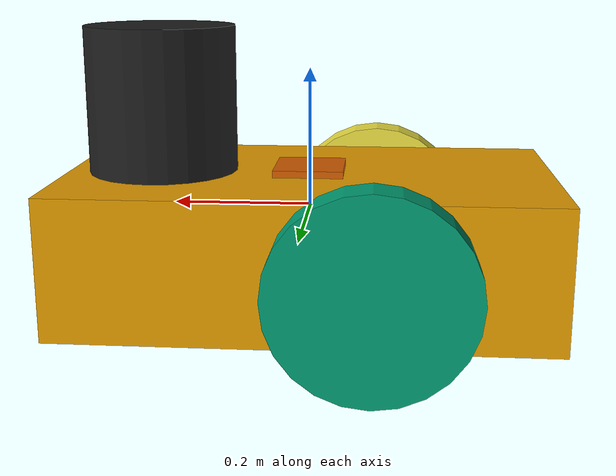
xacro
<?xml version="1.0"?>
<robot xmlns:xacro="http://www.ros.org/wiki/xacro" name="test1">

    <xacro:property name="base_width" value="0.39"/>
    <xacro:property name="base_length" value="0.70"/>
    <xacro:property name="base_height" value="0.20"/>

    <xacro:property name="wheel_radius" value="0.14"/>
    <xacro:property name="wheel_width" value="0.06"/>

    <xacro:property name="wheel_ygap" value="0.035"/>

    <xacro:property name="wheel_xoff" value="0.095"/>
    <xacro:property name="wheel_zoff" value="0.06"/>
    <xacro:property name="caster_xoff" value="0.217"/>

    <xacro:macro name="box_inertia" params="m w h d">
        <inertial>
            <origin xyz="0 0 0" rpy="${pi/2} 0 ${pi/2}"/>
            <mass value="${m}"/>
            <inertia ixx="${(m/12)*(h*h + d*d)}" ixy="0.0" ixz="0.0" iyy="${(m/12)*(w*w + d*d)}" iyz="0.0" izz="${(m/12)*(w*w + h*h)}"/>
        </inertial>
    </xacro:macro>

    <xacro:macro name="wheel_inertia" params="m r h">
        <inertial>
            <origin xyz="0 0 0" rpy="${pi/2} 0 0"/>
            <mass value="${m}"/>
            <inertia ixx="${(m/12) * (3*r*r + h*h)}" ixy="0.0" ixz="0.0" iyy="${(m/12) * (3*r*r + h*h)}" iyz="0.0" izz="${(m/2) * (r*r)}"/>
        </inertial>
    </xacro:macro>

  <xacro:macro name="sphere_inertia" params="m r">
    <inertial>
      <mass value="${m}"/>
      <inertia ixx="${(2/5) * m * (r*r)}" ixy="0.0" ixz="0.0" iyy="${(2/5) * m * (r*r)}" iyz="0.0" izz="${(2/5) * m * (r*r)}"/>
    </inertial>
  </xacro:macro>

    <link name="base_link">
        <visual>
            <origin xyz="0.0 0.0 -0.05" rpy="0 0 0"/>
            <geometry>
                <box size="${base_length} ${base_width} ${base_height}"/>
            </geometry>
        </visual>
        <collision>
            <geometry>
                <box size="${base_length} ${base_width} ${base_height}"/>
            </geometry>
        </collision>

        <xacro:box_inertia m="15.0" w="${base_width}" d="${base_length}" h="${base_height}"/>
    </link>

    <link name="base_footprint">
        <xacro:box_inertia m="0" w="0" h="0" d="0"/>
    </link>

    <joint name="base_joint" type="fixed">
        <origin xyz="0.0 0.0 ${-(wheel_radius+wheel_zoff)}" rpy="0.0 0.0 0.0"/>
        <parent link="base_link"/>
        <child link="base_footprint"/>
    </joint>

    <xacro:macro name="wheel" params="prefix x_reflect y_reflect">
    <link name="${prefix}_link">
        <visual>
            <origin xyz="0.0 0.0 0.0" rpy="${pi/2} 0.0 0.0"/>
            <geometry>
                <cylinder radius="${wheel_radius}" length="${wheel_width}"/>
            </geometry>
        </visual>

        <collision>
            <origin xyz="0.0 0.0 0.0" rpy="${pi/2} 0.0 0.0"/>
            <geometry>
                <cylinder radius="${wheel_radius}" length="${wheel_width}"/>
            </geometry>
        </collision>

        <xacro:wheel_inertia m="0.5" r="${wheel_radius}" h="${wheel_width}"/>
    </link>

    <joint name="${prefix}_joint" type="continuous">
        <origin xyz="${x_reflect*wheel_xoff} ${y_reflect*(base_width/2+wheel_ygap)} ${-wheel_zoff}" rpy="0.0 0.0 0.0"/>
        <parent link="base_link"/>
        <child link="${prefix}_link"/>
        <axis xyz="0.0 1.0 0.0"/>
    </joint>
    </xacro:macro>
    <xacro:wheel prefix="drivewhl_l" x_reflect="-1" y_reflect="1"/>
    <xacro:wheel prefix="drivewhl_r" x_reflect="-1" y_reflect="-1"/>

  <link name="front_caster">
    <visual>
      <geometry>
        <sphere radius="${(wheel_radius+wheel_zoff-(base_height/2))}"/>
      </geometry>
      <material name="Cyan">
        <color rgba="0 1.0 1.0 1.0"/>
      </material>
    </visual>

    <collision>
      <origin xyz="0 0 0" rpy="0 0 0"/>
      <geometry>
        <sphere radius="${(wheel_radius+wheel_zoff-(base_height/2))}"/>
      </geometry>
    </collision>

    <xacro:sphere_inertia m="5.0" r="${(wheel_radius+wheel_zoff-(base_height/2))}"/>
  </link>

  <gazebo reference="front_caster">
    <mu1>0.01</mu1>
    <mu2>0.01</mu2>
    <material>Gazebo/White</material>
  </gazebo>

  <joint name="caster_joint" type="fixed">
    <parent link="base_link"/>
    <child link="front_caster"/>
    <origin xyz="${caster_xoff} 0.0 ${-(base_height/2)}" rpy="0 0 0"/>
  </joint>

    <link name="imu_link">
    <visual>
      <geometry>
        <box size="0.1 0.1 0.1"/>
      </geometry>
    </visual>

    <collision>
      <geometry>
        <box size="0.1 0.1 0.1"/>
      </geometry>
    </collision>

    <xacro:box_inertia m="0.1" w="0.1" d="0.1" h="0.1"/>
  </link>

  <joint name="imu_joint" type="fixed">
    <parent link="base_link"/>
    <child link="imu_link"/>
    <origin xyz="0 0 0.01"/>
  </joint>

  <gazebo reference="imu_link">
    <gravity>true</gravity>
    <sensor name="twr_imu" type="imu">
      <always_on>true</always_on>
      <update_rate>100</update_rate>
      <visualize>true</visualize>
      <imu>
        <orientation>
          <x>
            <noise type="gaussian">
              <mean>0.0</mean>
              <stddev>2e-3</stddev>
            </noise>
          </x>
          <y>
            <noise type="gaussian">
              <mean>0.0</mean>
              <stddev>2e-3</stddev>
            </noise>
          </y>
          <z>
            <noise type="gaussian">
              <mean>0.0</mean>
              <stddev>2e-3</stddev>
            </noise>
          </z>
        </orientation>
        <angular_velocity>
          <x>
            <noise type="gaussian">
              <mean>0.0</mean>
              <stddev>2e-4</stddev>
            </noise>
          </x>
          <y>
            <noise type="gaussian">
              <mean>0.0</mean>
              <stddev>2e-4</stddev>
            </noise>
          </y>
          <z>
            <noise type="gaussian">
              <mean>0.0</mean>
              <stddev>2e-4</stddev>
            </noise>
          </z>
        </angular_velocity>
        <linear_acceleration>
          <x>
            <noise type="gaussian">
              <mean>0.0</mean>
              <stddev>1.7e-2</stddev>
            </noise>
          </x>
          <y>
            <noise type="gaussian">
              <mean>0.0</mean>
              <stddev>1.7e-2</stddev>
            </noise>
          </y>
          <z>
            <noise type="gaussian">
              <mean>0.0</mean>
              <stddev>1.7e-2</stddev>
            </noise>
          </z>
        </linear_acceleration>
      </imu>
      <plugin name="two_wheeled_robot_imu" filename="libgazebo_ros_imu_sensor.so">
        <initial_orientation_as_reference>false</initial_orientation_as_reference>
        <frame_name>imu_link</frame_name>
        <ros>
          <namespace>/imu</namespace>
          <remapping>~/out:=data</remapping>
        </ros>
      </plugin>
    </sensor>
</gazebo>

 <link name="lidar_link">
    <inertial>
      <origin xyz="0 0 0" rpy="0 0 0"/>
      <mass value="2.0"/>
      <inertia ixx="0.001"  ixy="0"  ixz="0" iyy="0.001" iyz="0" izz="0.001" />
    </inertial>

    <collision>
      <origin xyz="0 0 0" rpy="0 0 0"/>
      <geometry>
         <cylinder radius="0.108" length="0.22"/>
      </geometry>
    </collision>

    <visual>
      <origin xyz="0 0 0" rpy="0 0 0"/>
      <geometry>
         <cylinder radius="0.108" length="0.22"/>
      </geometry>
    </visual>
  </link>

  <joint name="lidar_joint" type="fixed">
    <parent link="base_link"/>
    <child link="lidar_link"/>
    <origin xyz="0.215 0.0 0.150" rpy="0 0 0"/>
  </joint>

  <gazebo reference="lidar_link">
    <sensor name="lidar" type="ray">
      <always_on>true</always_on>
      <visualize>true</visualize>
      <update_rate>3 0.0</update_rate>
      <ray>
        <scan>
          <horizontal>
            <samples>419</samples>
            <resolution>0.86</resolution>
            <min_angle>-3.14159</min_angle>
            <max_angle>3.14159</max_angle>
          </horizontal>
        </scan>
        <range>
          <min>0.3</min>
          <max>15.0</max>
          <resolution>0.86</resolution>
        </range>
        <noise>
          <type>gaussian</type>
          <mean>0.0</mean>
          <stddev>0.01</stddev>
        </noise>
      </ray>
      <plugin name="scan" filename="libgazebo_ros_ray_sensor.so">
        <ros>
          <remapping>~/out:=scan</remapping>
        </ros>
        <output_type>sensor_msgs/LaserScan</output_type>
        <frame_name>lidar_link</frame_name>
      </plugin>
    </sensor>
  </gazebo>
  <gazebo reference="lidar_link">
    <mu1>0.01</mu1>
    <mu2>0.01</mu2>
    <material>Gazebo/Black</material>
  </gazebo>

  <gazebo>
    <plugin name="two_wheeled_robot_diff_drive" filename="libgazebo_ros_diff_drive.so">

      <update_rate>30</update_rate>

      <!-- wheels -->
      <left_joint>drivewhl_l_joint</left_joint>
      <right_joint>drivewhl_r_joint</right_joint>

      <!-- kinematics -->
      <wheel_separation>0.52</wheel_separation>
      <wheel_diameter>0.28</wheel_diameter>

      <!-- limits -->
      <max_wheel_torque>20</max_wheel_torque>
      <max_wheel_acceleration>1.0</max_wheel_acceleration>

      <!-- Receive velocity commands on this ROS topic -->
      <command_topic>cmd_vel</command_topic>

      <!-- output -->
      <!-- When false, publish no wheel odometry data to a ROS topic -->
      <publish_odom>true</publish_odom>

      <!-- When true, publish coordinate transform from odom to base_footprint -->
      <!-- I usually use the robot_localization package to publish this transform -->
      <publish_odom_tf>true</publish_odom_tf>

      <!-- When true, publish coordinate transform from base_link to the wheels -->
      <!-- The robot_state_publisher package is often used to publish this transform -->
      <publish_wheel_tf>true</publish_wheel_tf>

      <odometry_topic>odom</odometry_topic>
      <odometry_frame>odom</odometry_frame>
      <robot_base_frame>base_link</robot_base_frame>

      <odometry_source>1</odometry_source>
    </plugin>
  </gazebo>

</robot>
